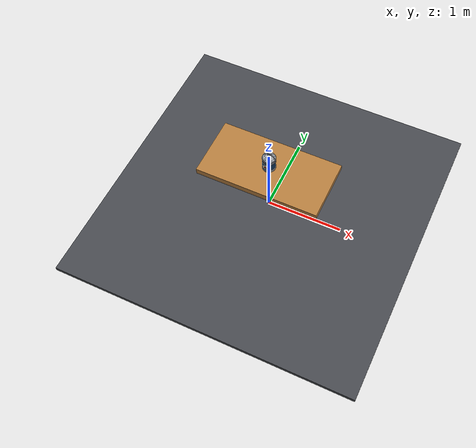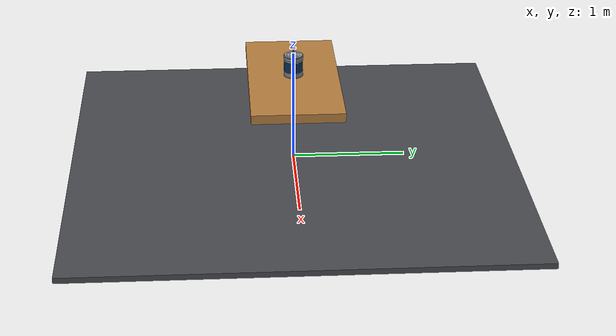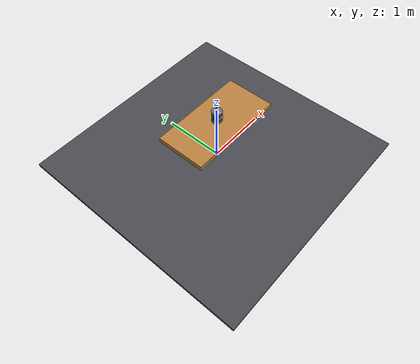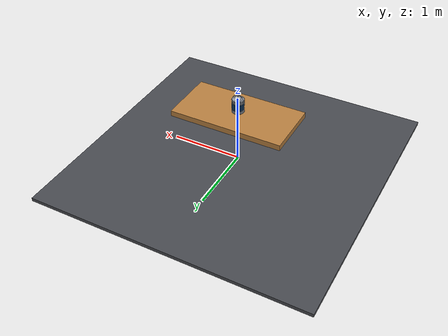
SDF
<?xml version="1.0"?>
<sdf version="1.6">
  <world name="paint_can_demo">
    <physics type="ode"><max_step_size>0.001</max_step_size><real_time_update_rate>1000</real_time_update_rate><gravity>0 0 -9.81</gravity></physics>
    <scene><ambient>0.55 0.55 0.57 1</ambient><background>0.12 0.12 0.14 1</background><shadows>false</shadows></scene>
    <model name="ground"><static>true</static><link name="link"><collision name="c"><geometry><box><size>4 4 0.05</size></box></geometry><pose>0 0 -0.025 0 0 0</pose></collision><visual name="v"><geometry><box><size>4 4 0.05</size></box></geometry><pose>0 0 -0.025 0 0 0</pose><material><ambient>0.18 0.18 0.20 1</ambient><diffuse>0.28 0.29 0.31 1</diffuse><specular>0.04 0.04 0.04 1</specular></material></visual></link></model>
    <model name="bench"><static>true</static><link name="link"><collision name="c"><pose>0 0 0.75 0 0 0</pose><geometry><box><size>1.6 0.8 0.08</size></box></geometry></collision><visual name="v"><pose>0 0 0.75 0 0 0</pose><geometry><box><size>1.6 0.8 0.08</size></box></geometry><material><ambient>0.32 0.19 0.08 1</ambient><diffuse>0.72 0.50 0.25 1</diffuse><specular>0.05 0.05 0.05 1</specular></material></visual></link></model>
    <include><uri>model://paint_can</uri><name>paint_can</name><pose>0 0 0.80 0 0 0</pose></include>
    <gui fullscreen="0"><camera name="user_camera"><pose>1.7 1.5 1.4 0 0.35 -2.35</pose><view_controller>orbit</view_controller></camera></gui>
  </world>
</sdf>

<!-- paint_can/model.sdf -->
<sdf version="1.6">
  <model name="paint_can">
    <static>false</static>
    <self_collide>false</self_collide>
    <link name="link">
      <inertial>
        <pose>0 0 0.095 0 0 0</pose>
        <mass>1.5</mass>
        <inertia>
          <ixx>0.00655</ixx><iyy>0.00655</iyy><izz>0.00510</izz>
          <ixy>0</ixy><ixz>0</ixz><iyz>0</iyz>
        </inertia>
      </inertial>

      <visual name="body"><geometry><mesh><uri>model://paint_can/meshes/body.stl</uri></mesh></geometry><material><ambient>0.18 0.19 0.20 1</ambient><diffuse>0.48 0.50 0.53 1</diffuse><specular>0.95 0.95 0.95 1</specular></material></visual>
      <visual name="upper_collar"><geometry><mesh><uri>model://paint_can/meshes/upper_collar.stl</uri></mesh></geometry><material><ambient>0.20 0.21 0.22 1</ambient><diffuse>0.56 0.58 0.61 1</diffuse><specular>1 1 1 1</specular></material></visual>
      <visual name="bottom_rim"><geometry><mesh><uri>model://paint_can/meshes/bottom_rim.stl</uri></mesh></geometry><material><ambient>0.20 0.21 0.22 1</ambient><diffuse>0.62 0.64 0.67 1</diffuse><specular>1 1 1 1</specular></material></visual>
      <visual name="top_rim"><geometry><mesh><uri>model://paint_can/meshes/top_rim.stl</uri></mesh></geometry><material><ambient>0.20 0.21 0.22 1</ambient><diffuse>0.62 0.64 0.67 1</diffuse><specular>1 1 1 1</specular></material></visual>
      <visual name="lid"><geometry><mesh><uri>model://paint_can/meshes/lid.stl</uri></mesh></geometry><material><ambient>0.20 0.21 0.22 1</ambient><diffuse>0.60 0.62 0.65 1</diffuse><specular>1 1 1 1</specular></material></visual>
      <visual name="lid_rings"><geometry><mesh><uri>model://paint_can/meshes/lid_rings.stl</uri></mesh></geometry><material><ambient>0.24 0.25 0.26 1</ambient><diffuse>0.72 0.74 0.76 1</diffuse><specular>1 1 1 1</specular></material></visual>

      <visual name="label_band"><geometry><mesh><uri>model://paint_can/meshes/label_band.stl</uri></mesh></geometry><material><ambient>0.025 0.075 0.12 1</ambient><diffuse>0.045 0.18 0.32 1</diffuse><specular>0.12 0.12 0.12 1</specular></material></visual>
      <visual name="label_edges"><geometry><mesh><uri>model://paint_can/meshes/label_edges.stl</uri></mesh></geometry><material><ambient>0.20 0.21 0.22 1</ambient><diffuse>0.62 0.64 0.67 1</diffuse><specular>0.8 0.8 0.8 1</specular></material></visual>
      <visual name="front_label"><geometry><mesh><uri>model://paint_can/meshes/front_label.stl</uri></mesh></geometry><material><ambient>0.72 0.72 0.68 1</ambient><diffuse>0.92 0.92 0.86 1</diffuse><specular>0.05 0.05 0.05 1</specular></material></visual>
      <visual name="paint_swatch"><geometry><mesh><uri>model://paint_can/meshes/paint_swatch.stl</uri></mesh></geometry><material><ambient>0.45 0.08 0.03 1</ambient><diffuse>0.85 0.18 0.05 1</diffuse><specular>0.08 0.08 0.08 1</specular></material></visual>

      <visual name="handle_lugs"><geometry><mesh><uri>model://paint_can/meshes/handle_lugs.stl</uri></mesh></geometry><material><ambient>0.18 0.19 0.20 1</ambient><diffuse>0.55 0.57 0.60 1</diffuse><specular>0.9 0.9 0.9 1</specular></material></visual>
      <visual name="wire_handle"><geometry><mesh><uri>model://paint_can/meshes/wire_handle.stl</uri></mesh></geometry><material><ambient>0.16 0.17 0.18 1</ambient><diffuse>0.52 0.54 0.56 1</diffuse><specular>0.95 0.95 0.95 1</specular></material></visual>
      <visual name="handle_grip"><geometry><mesh><uri>model://paint_can/meshes/handle_grip.stl</uri></mesh></geometry><material><ambient>0.025 0.025 0.028 1</ambient><diffuse>0.06 0.06 0.07 1</diffuse><specular>0.18 0.18 0.18 1</specular></material></visual>
      <visual name="side_seam"><geometry><mesh><uri>model://paint_can/meshes/side_seam.stl</uri></mesh></geometry><material><ambient>0.16 0.17 0.18 1</ambient><diffuse>0.40 0.42 0.44 1</diffuse><specular>0.75 0.75 0.75 1</specular></material></visual>

      <!-- Simplified physics: stable cylinder rather than detailed mesh collision. -->
      <collision name="can_collision">
        <pose>0 0 0.096 0 0 0</pose>
        <geometry><cylinder><radius>0.0835</radius><length>0.192</length></cylinder></geometry>
        <surface>
          <friction><ode><mu>0.9</mu><mu2>0.9</mu2></ode></friction>
          <contact><ode><kp>100000</kp><kd>10</kd><max_vel>0.05</max_vel><min_depth>0.001</min_depth></ode></contact>
        </surface>
      </collision>

      <velocity_decay><linear>0.03</linear><angular>0.08</angular></velocity_decay>
    </link>
  </model>
</sdf>
